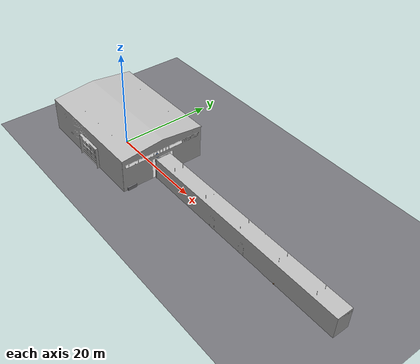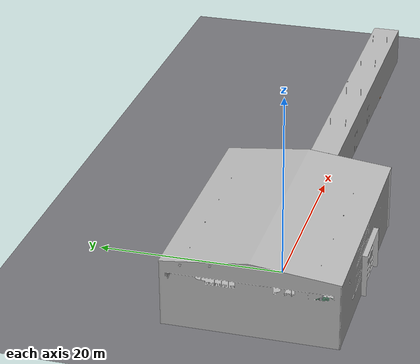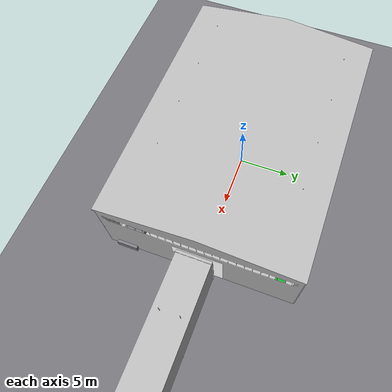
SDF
<sdf version="1.8">
 <world name="plant">
  <physics name="default" type="ode">
   <max_step_size>0.004</max_step_size>
   <real_time_factor>1.0</real_time_factor>
  </physics>
  <plugin filename="gz-sim-physics-system" name="gz::sim::systems::Physics"/>
  <plugin filename="gz-sim-scene-broadcaster-system" name="gz::sim::systems::SceneBroadcaster"/>
  <plugin filename="gz-sim-user-commands-system" name="gz::sim::systems::UserCommands"/>
  <plugin filename="gz-sim-sensors-system" name="gz::sim::systems::Sensors">
   <render_engine>ogre2</render_engine>
  </plugin>
  <plugin filename="gz-sim-imu-system" name="gz::sim::systems::Imu"/>
  <plugin filename="gz-sim-contact-system" name="gz::sim::systems::Contact"/>
  <plugin filename="gz-sim-apply-link-wrench-system" name="gz::sim::systems::ApplyLinkWrench"/>
  <scene><ambient>0.5 0.5 0.5 1</ambient><background>0.35 0.4 0.45 1</background></scene>
  <light type="directional" name="sun">
   <cast_shadows>false</cast_shadows>
   <pose>0 0 10 0 0 0</pose>
   <diffuse>0.9 0.9 0.9 1</diffuse>
   <direction>-0.3 0.2 -0.9</direction>
  </light>
  <light type="point" name="factory_light_1">
   <pose>-6 0 6.5 0 0 0</pose>
   <diffuse>0.8 0.8 0.7 1</diffuse>
   <attenuation><range>25</range><linear>0.05</linear></attenuation>
  </light>
  <light type="point" name="factory_light_2">
   <pose>6 0 6.5 0 0 0</pose>
   <diffuse>0.8 0.8 0.7 1</diffuse>
   <attenuation><range>25</range><linear>0.05</linear></attenuation>
  </light>
  <light type="point" name="corridor_light_1">
   <pose>25 0 3.8 0 0 0</pose>
   <diffuse>0.6 0.6 0.55 1</diffuse>
   <attenuation><range>18</range><linear>0.08</linear></attenuation>
  </light>
  <light type="point" name="corridor_light_2">
   <pose>45 0 3.8 0 0 0</pose>
   <diffuse>0.6 0.6 0.55 1</diffuse>
   <attenuation><range>18</range><linear>0.08</linear></attenuation>
  </light>
  <model name="ground">
   <static>true</static>
   <link name="link">
    <collision name="collision">
     <geometry><plane><normal>0 0 1</normal><size>140 60</size></plane></geometry>
     <surface><friction><ode><mu>0.9</mu><mu2>0.9</mu2></ode></friction></surface>
    </collision>
    <visual name="visual">
     <geometry><plane><normal>0 0 1</normal><size>140 60</size></plane></geometry>
     <material><ambient>0.45 0.45 0.47 1</ambient><diffuse>0.45 0.45 0.47 1</diffuse></material>
    </visual>
   </link>
  </model>
  <model name="plant_building">
   <static>true</static>
   <link name="walls">
    <collision name="f_north_c">
     <pose>0 9 3.5 0 0 0</pose>
     <geometry><box><size>25 0.2 7</size></box></geometry>
    </collision>
    <collision name="f_south_c">
     <pose>0 -9 3.5 0 0 0</pose>
     <geometry><box><size>25 0.2 7</size></box></geometry>
    </collision>
    <collision name="f_west_c">
     <pose>-12.5 0 3.5 0 0 0</pose>
     <geometry><box><size>0.2 18.2 7</size></box></geometry>
    </collision>
    <collision name="f_east_n_c">
     <pose>12.5 5.375 3.5 0 0 0</pose>
     <geometry><box><size>0.2 7.25 7</size></box></geometry>
    </collision>
    <collision name="f_east_s_c">
     <pose>12.5 -5.375 3.5 0 0 0</pose>
     <geometry><box><size>0.2 7.25 7</size></box></geometry>
    </collision>
    <collision name="f_east_lintel_c">
     <pose>12.5 0 5.5 0 0 0</pose>
     <geometry><box><size>0.2 3.5 3</size></box></geometry>
    </collision>
    <collision name="c_north_c">
     <pose>35 1.75 2 0 0 0</pose>
     <geometry><box><size>45 0.2 4</size></box></geometry>
    </collision>
    <collision name="c_south_c">
     <pose>35 -1.75 2 0 0 0</pose>
     <geometry><box><size>45 0.2 4</size></box></geometry>
    </collision>
    <collision name="c_end_c">
     <pose>57.5 0 2 0 0 0</pose>
     <geometry><box><size>0.2 3.7 4</size></box></geometry>
    </collision>
    <visual name="factory_mesh_v">
     <pose>-2.475 0.205 0.005 0 0 0</pose>
     <geometry><mesh><uri>model://plant_assets/meshes/Factory_03/Factory_03.obj</uri></mesh></geometry>
    </visual>
    <visual name="corridor_mesh_v">
     <pose>3.45 0.015 -0.035 0 0 0</pose>
     <geometry>
      <mesh>
       <uri>model://plant_assets/meshes/Corridor_Wall_02/Corridor_Wall_02.obj</uri>
       <scale>0.926 0.92 1.0</scale>
      </mesh>
     </geometry>
    </visual>
   </link>
  </model>
  <model name="corridor_pipe_1">
   <static>true</static>
   <pose>20 0 0.035 1.5708 0 0</pose>
   <link name="link">
    <collision name="c">
     <geometry><cylinder><radius>0.035</radius><length>3.4</length></cylinder></geometry>
    </collision>
    <visual name="v">
     <geometry><cylinder><radius>0.035</radius><length>3.4</length></cylinder></geometry>
     <material><ambient>0.5 0.35 0.2 1</ambient><diffuse>0.5 0.35 0.2 1</diffuse></material>
    </visual>
   </link>
  </model>
  <model name="corridor_pipe_2">
   <static>true</static>
   <pose>32 1.05 0.08 1.5708 0 0</pose>
   <link name="link">
    <collision name="c">
     <geometry><cylinder><radius>0.08</radius><length>1.4</length></cylinder></geometry>
    </collision>
    <visual name="v">
     <geometry><cylinder><radius>0.08</radius><length>1.4</length></cylinder></geometry>
     <material><ambient>0.45 0.45 0.5 1</ambient><diffuse>0.45 0.45 0.5 1</diffuse></material>
    </visual>
   </link>
  </model>
  <model name="corridor_pipe_3">
   <static>true</static>
   <pose>45 -1.05 0.12 1.5708 0 0</pose>
   <link name="link">
    <collision name="c">
     <geometry><cylinder><radius>0.12</radius><length>1.4</length></cylinder></geometry>
    </collision>
    <visual name="v">
     <geometry><cylinder><radius>0.12</radius><length>1.4</length></cylinder></geometry>
     <material><ambient>0.5 0.35 0.2 1</ambient><diffuse>0.5 0.35 0.2 1</diffuse></material>
    </visual>
   </link>
  </model>
  <model name="factory_pallet_1">
   <static>true</static>
   <pose>-6 4 0.075 0 0 0.3</pose>
   <link name="link">
    <collision name="c"><geometry><box><size>1.2 0.8 0.15</size></box></geometry></collision>
    <visual name="v">
     <pose>0.05 -0.17 -0.075 0 0 0</pose>
     <geometry>
      <mesh><uri>model://plant_assets/meshes/Plastic_Pallet_01/Plastic_Pallet_01.obj</uri></mesh>
     </geometry>
    </visual>
   </link>
  </model>
  <model name="factory_pallet_2">
   <static>true</static>
   <pose>3 -5 0.075 0 0 -0.6</pose>
   <link name="link">
    <collision name="c"><geometry><box><size>1.2 0.8 0.15</size></box></geometry></collision>
    <visual name="v">
     <pose>0.05 -0.17 -0.075 0 0 0</pose>
     <geometry>
      <mesh><uri>model://plant_assets/meshes/Plastic_Pallet_01/Plastic_Pallet_01.obj</uri></mesh>
     </geometry>
    </visual>
   </link>
  </model>
  <model name="factory_crate">
   <static>true</static>
   <pose>5 5 0.3 0 0 0.2</pose>
   <link name="link">
    <collision name="c"><geometry><box><size>0.6 0.6 0.6</size></box></geometry></collision>
    <visual name="v">
     <geometry><box><size>0.6 0.6 0.6</size></box></geometry>
     <material><ambient>0.6 0.5 0.3 1</ambient><diffuse>0.6 0.5 0.3 1</diffuse></material>
    </visual>
   </link>
  </model>
  <model name="factory_fallen_pipe">
   <static>true</static>
   <pose>-3 -3 0.1 0 1.5708 0.8</pose>
   <link name="link">
    <collision name="c">
     <geometry><cylinder><radius>0.10</radius><length>2.5</length></cylinder></geometry>
    </collision>
    <visual name="v">
     <geometry><cylinder><radius>0.10</radius><length>2.5</length></cylinder></geometry>
     <material><ambient>0.45 0.45 0.5 1</ambient><diffuse>0.45 0.45 0.5 1</diffuse></material>
    </visual>
   </link>
  </model>
  <model name="factory_barrel">
   <static>true</static>
   <pose>8 2 0.45 0 0 0</pose>
   <link name="link">
    <collision name="c">
     <geometry><cylinder><radius>0.3</radius><length>0.9</length></cylinder></geometry>
    </collision>
    <visual name="v">
     <geometry><cylinder><radius>0.3</radius><length>0.9</length></cylinder></geometry>
     <material><ambient>0.2 0.35 0.6 1</ambient><diffuse>0.2 0.35 0.6 1</diffuse></material>
    </visual>
   </link>
  </model>
  <model name="factory_machine">
   <static>true</static>
   <pose>-9 -6 0 0 0 0</pose>
   <link name="link">
    <collision name="body_c">
     <pose>0 0 1.25 0 0 0</pose>
     <geometry><box><size>3 2 2.5</size></box></geometry>
    </collision>
    <visual name="body_v">
     <pose>0 0 1.25 0 0 0</pose>
     <geometry><box><size>3 2 2.5</size></box></geometry>
     <material><ambient>0.25 0.45 0.35 1</ambient><diffuse>0.25 0.45 0.35 1</diffuse></material>
    </visual>
    <collision name="motor_c">
     <pose>1.9 0 0.6 0 1.5708 0</pose>
     <geometry><cylinder><radius>0.4</radius><length>0.8</length></cylinder></geometry>
    </collision>
    <visual name="motor_v">
     <pose>1.9 0 0.6 0 1.5708 0</pose>
     <geometry><cylinder><radius>0.4</radius><length>0.8</length></cylinder></geometry>
     <material><ambient>0.3 0.3 0.32 1</ambient><diffuse>0.3 0.3 0.32 1</diffuse></material>
    </visual>
    <collision name="pipe_c">
     <pose>0 0 3.0 0 1.5708 0</pose>
     <geometry><cylinder><radius>0.15</radius><length>6.5</length></cylinder></geometry>
    </collision>
    <visual name="pipe_v">
     <pose>0 0 3.0 0 1.5708 0</pose>
     <geometry><cylinder><radius>0.15</radius><length>6.5</length></cylinder></geometry>
     <material><ambient>0.55 0.55 0.58 1</ambient><diffuse>0.55 0.55 0.58 1</diffuse></material>
    </visual>
   </link>
  </model>
  <model name="stairs">
   <static>true</static>
   <pose>9.5 -7 0 0 0 0</pose>
   <link name="link">
    <collision name="s1_c">
     <pose>0 0 0.09 0 0 0</pose>
     <geometry><box><size>0.35 2 0.18</size></box></geometry>
    </collision>
    <visual name="s1_v">
     <pose>0 0 0.09 0 0 0</pose>
     <geometry><box><size>0.35 2 0.18</size></box></geometry>
     <material><ambient>0.5 0.5 0.52 1</ambient><diffuse>0.5 0.5 0.52 1</diffuse></material>
    </visual>
    <collision name="s2_c">
     <pose>0.35 0 0.18 0 0 0</pose>
     <geometry><box><size>0.35 2 0.36</size></box></geometry>
    </collision>
    <visual name="s2_v">
     <pose>0.35 0 0.18 0 0 0</pose>
     <geometry><box><size>0.35 2 0.36</size></box></geometry>
     <material><ambient>0.5 0.5 0.52 1</ambient><diffuse>0.5 0.5 0.52 1</diffuse></material>
    </visual>
    <collision name="s3_c">
     <pose>0.7 0 0.27 0 0 0</pose>
     <geometry><box><size>0.35 2 0.54</size></box></geometry>
    </collision>
    <visual name="s3_v">
     <pose>0.7 0 0.27 0 0 0</pose>
     <geometry><box><size>0.35 2 0.54</size></box></geometry>
     <material><ambient>0.5 0.5 0.52 1</ambient><diffuse>0.5 0.5 0.52 1</diffuse></material>
    </visual>
    <collision name="s4_c">
     <pose>1.05 0 0.36 0 0 0</pose>
     <geometry><box><size>0.35 2 0.72</size></box></geometry>
    </collision>
    <visual name="s4_v">
     <pose>1.05 0 0.36 0 0 0</pose>
     <geometry><box><size>0.35 2 0.72</size></box></geometry>
     <material><ambient>0.5 0.5 0.52 1</ambient><diffuse>0.5 0.5 0.52 1</diffuse></material>
    </visual>
    <collision name="p_c">
     <pose>2.225 0 0.36 0 0 0</pose>
     <geometry><box><size>2 2 0.72</size></box></geometry>
    </collision>
    <visual name="p_v">
     <pose>2.225 0 0.36 0 0 0</pose>
     <geometry><box><size>2 2 0.72</size></box></geometry>
     <material><ambient>0.5 0.5 0.52 1</ambient><diffuse>0.5 0.5 0.52 1</diffuse></material>
    </visual>
   </link>
  </model>
  <model name="gauge_panel">
   <static>true</static>
   <pose>38 1.62 0.6 0 0 0</pose>
   <link name="link">
    <collision name="c"><geometry><box><size>0.5 0.06 0.5</size></box></geometry></collision>
    <visual name="panel_v">
     <geometry><box><size>0.5 0.06 0.5</size></box></geometry>
     <material><ambient>0.9 0.9 0.88 1</ambient><diffuse>0.9 0.9 0.88 1</diffuse></material>
    </visual>
    <visual name="dial_v">
     <pose>0 -0.034 0 0 0 0</pose>
     <geometry><box><size>0.36 0.005 0.36</size></box></geometry>
     <material>
      <diffuse>1 1 1 1</diffuse>
      <pbr><metal><albedo_map>model://gauge/dial.png</albedo_map></metal></pbr>
     </material>
    </visual>
   </link>
  </model>
  <model name="gauge_needle">
   <static>true</static>
   <pose>38 1.575 0.6 0 0 0</pose>
   <link name="link">
    <visual name="v">
     <pose>0.055 0 0 0 0 0</pose>
     <geometry><box><size>0.13 0.004 0.014</size></box></geometry>
     <material><ambient>0.8 0.05 0.05 1</ambient><diffuse>0.8 0.05 0.05 1</diffuse></material>
    </visual>
   </link>
  </model>
  <model name="steam_trap">
   <static>true</static>
   <pose>28 1.45 0.5 0 0 0</pose>
   <link name="link">
    <collision name="c"><geometry><box><size>0.25 0.25 0.4</size></box></geometry></collision>
    <visual name="body_v">
     <geometry><box><size>0.25 0.25 0.4</size></box></geometry>
     <material><ambient>0.45 0.4 0.35 1</ambient><diffuse>0.45 0.4 0.35 1</diffuse></material>
    </visual>
    <visual name="valve_v">
     <pose>0 -0.15 0.1 1.5708 0 0</pose>
     <geometry><cylinder><radius>0.06</radius><length>0.1</length></cylinder></geometry>
     <material><ambient>0.6 0.15 0.1 1</ambient><diffuse>0.6 0.15 0.1 1</diffuse></material>
    </visual>
   </link>
  </model>
  <model name="charging_station">
   <static>true</static>
   <pose>11 7.5 0.025 0 0 0</pose>
   <link name="link">
    <collision name="c"><geometry><box><size>1 1 0.05</size></box></geometry></collision>
    <visual name="v">
     <geometry><box><size>1 1 0.05</size></box></geometry>
     <material><ambient>0.1 0.7 0.2 1</ambient><diffuse>0.1 0.7 0.2 1</diffuse></material>
    </visual>
   </link>
  </model>
 </world>
</sdf>
